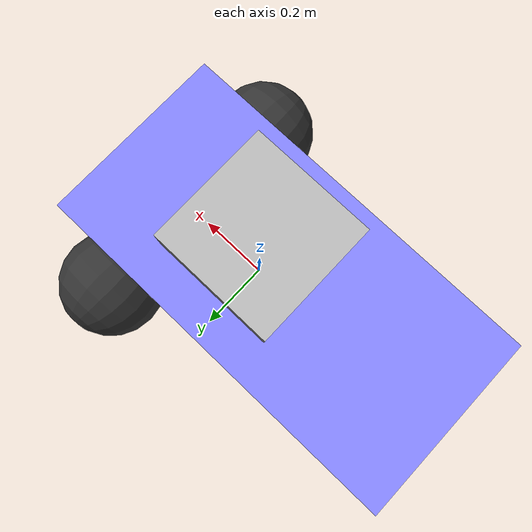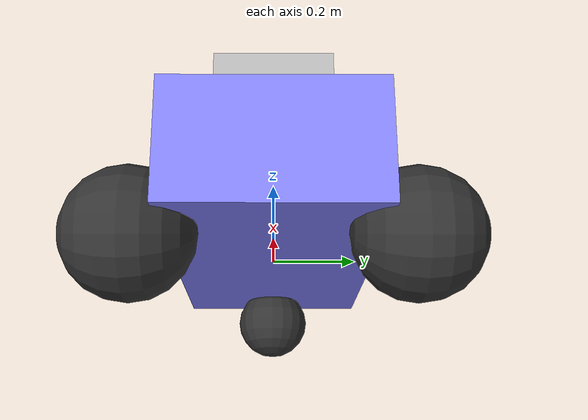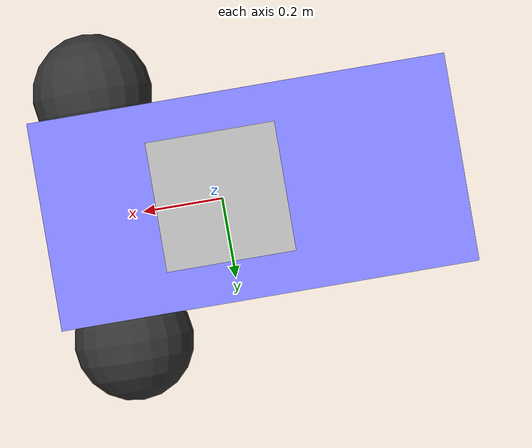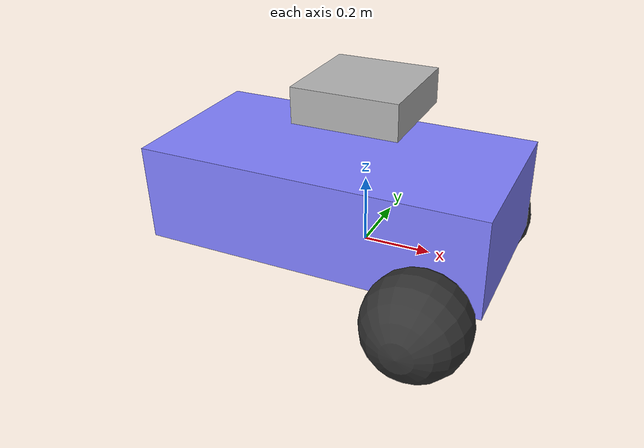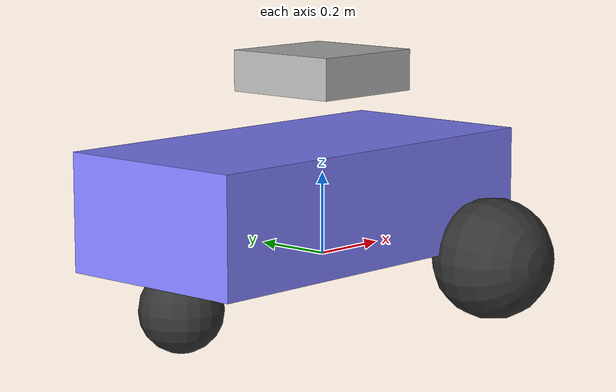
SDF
<?xml version="1.0" ?>
<sdf version="1.8">
    <model name='vehicle'>
        <link name='chassis'>
            <pose>-0.075714 0 0.147181 0 0 0</pose>
            <inertial>
                <mass>0.571975</mass>
                <inertia>
                    <ixx>0.063082</ixx>
                    <ixy>0</ixy>
                    <ixz>0</ixz>
                    <iyy>0.2082595</iyy>
                    <iyz>0</iyz>
                    <izz>0.240507</izz>
                </inertia>
            </inertial>
            <visual name='visual_chassis'>
                <geometry>
                    <box>
                        <size>1.00571 0.5 0.284363</size>
                    </box>
                </geometry>
                <material>
                    <ambient>0.5 0.5 1.0 1</ambient>
                    <diffuse>0.5 0.5 1.0 1</diffuse>
                    <specular>0.0 0.0 1.0 1</specular>
                </material>
            </visual>
            <collision name='collision_chassis'>
                <geometry>
                    <box>
                        <size>1.00571 0.5 0.284363</size>
                    </box>
                </geometry>
            </collision>
        </link>

        <link name='camera'>
            <pose>0 0 0.45 0 0 0</pose>
            <inertial>
              <mass>0.3</mass>
              <inertia>
                <ixx>0.005</ixx>
                <ixy>0</ixy>
                <ixz>0</ixz>
                <iyy>0.005</iyy>
                <iyz>0</iyz>
                <izz>0.005</izz>
              </inertia>
            </inertial>
            <visual name='visual_camera'>
              <geometry>
                <box>
                  <size>0.3 0.3 0.1</size>
                </box>
              </geometry>
              <material>
                <ambient>0.7 0.7 0.7 1</ambient>
                <diffuse>0.7 0.7 0.7 1</diffuse>
                <specular>0.3 0.3 0.3 1</specular>
              </material>
            </visual>
            <sensor name="camera" type="camera">
              <camera>
                <horizontal_fov>1.047</horizontal_fov>
                <image>
                  <width>320</width>
                  <height>240</height>
                </image>
                <clip>
                  <near>0.1</near>
                  <far>100</far>
                </clip>
              </camera>
              <always_on>1</always_on>
              <update_rate>30</update_rate>
              <visualize>true</visualize>
              <topic>camera</topic>
            </sensor>
            <collision name='collision_camera'>
              <geometry>
                <box>
                  <size>0.3 0.3 0.1</size>
                </box>
              </geometry>
            </collision>
        </link>

        <joint name='camera_joint' type='fixed'>
            <parent>chassis</parent>
            <child>camera</child>
        </joint>

        <link name='left_wheel'>
            <pose>0.277142 0.3125145 -0.0125 -1.5707 0 0</pose>
            <inertial>
                <mass>1</mass>
                <inertia>
                    <ixx>0.0729165</ixx>
                    <ixy>0</ixy>
                    <ixz>0</ixz>
                    <iyy>0.0729165</iyy>
                    <iyz>0</iyz>
                    <izz>0.0625</izz>
                </inertia>
            </inertial>
            <visual name='visual_left_wheel'>
                <geometry>
                    <sphere>
                        <radius>0.15</radius>
                    </sphere>
                </geometry>
                <material>
                    <ambient>0.2 0.2 0.2 1</ambient>
                    <diffuse>0.2 0.2 0.2 1</diffuse>
                    <specular>0.2 0.2 0.2 1</specular>
                </material>
            </visual>
            <collision name='collision_left_wheel'>
                <geometry>
                    <sphere>
                        <radius>0.15</radius>
                    </sphere>
                </geometry>
            </collision>
        </link>

        <link name='right_wheel'>
            <pose>0.277141 -0.3125145 -0.0125 -1.5707 0 0</pose>
            <inertial>
                <mass>1</mass>
                <inertia>
                    <ixx>0.0729165</ixx>
                    <ixy>0</ixy>
                    <ixz>0</ixz>
                    <iyy>0.0729165</iyy>
                    <iyz>0</iyz>
                    <izz>0.0625</izz>
                </inertia>
            </inertial>
            <visual name='visual_right_wheel'>
                <geometry>
                    <sphere>
                        <radius>0.15</radius>
                    </sphere>
                </geometry>
                <material>
                    <ambient>0.2 0.2 0.2 1</ambient>
                    <diffuse>0.2 0.2 0.2 1</diffuse>
                    <specular>0.2 0.2 0.2 1</specular>
                </material>
            </visual>
            <collision name='collision_right_wheel'>
                <geometry>
                    <sphere>
                        <radius>0.15</radius>
                    </sphere>
                </geometry>
            </collision>
        </link>

        <link name='caster'>
            <pose>-0.478569 0 -0.0625 0 -0 0</pose>
            <inertial>
                <mass>0.5</mass>
                <inertia>
                    <ixx>0.05</ixx>
                    <ixy>0</ixy>
                    <ixz>0</ixz>
                    <iyy>0.05</iyy>
                    <iyz>0</iyz>
                    <izz>0.05</izz>
                </inertia>
            </inertial>
            <visual name='visual_caster'>
                <geometry>
                    <sphere>
                        <radius>0.1</radius>
                    </sphere>
                </geometry>
                <material>
                    <ambient>0.2 0.2 0.2 1</ambient>
                    <diffuse>0.2 0.2 0.2 1</diffuse>
                    <specular>0.2 0.2 0.2 1</specular>
                </material>
            </visual>
            <collision name='collision_caster'>
                <geometry>
                    <sphere>
                        <radius>0.1</radius>
                    </sphere>
                </geometry>
            </collision>
        </link>

        <joint name='left_wheel_joint' type='revolute'>
            <parent>chassis</parent>
            <child>left_wheel</child>
            <axis>
                <xyz>0 0 1</xyz>
                <limit>
                    <lower>-1.79769e+308</lower>
                    <upper>1.79769e+308</upper>
                </limit>
            </axis>
        </joint>

        <joint name='right_wheel_joint' type='revolute'>
            <parent>chassis</parent>
            <child>right_wheel</child>
            <axis>
                <xyz>0 0 1</xyz>
                <limit>
                    <lower>-1.79769e+308</lower>
                    <upper>1.79769e+308</upper>
                </limit>
            </axis>
        </joint>

        <joint name='caster_wheel' type='ball'>
            <parent>chassis</parent>
            <child>caster</child>
        </joint>

        <plugin
            filename="ignition-gazebo-diff-drive-system"
            name="ignition::gazebo::systems::DiffDrive">
            <left_joint>left_wheel_joint</left_joint>
            <right_joint>right_wheel_joint</right_joint>
            <wheel_separation>0.625</wheel_separation>
            <wheel_radius>0.15</wheel_radius>
            <odom_publish_frequency>1</odom_publish_frequency>
            <max_linear_acceleration>1</max_linear_acceleration>
            <min_linear_acceleration>-1</min_linear_acceleration>
            <max_angular_acceleration>2</max_angular_acceleration>
            <min_angular_acceleration>-2</min_angular_acceleration>
            <max_linear_velocity>0.5</max_linear_velocity>
            <min_linear_velocity>-0.5</min_linear_velocity>
            <max_angular_velocity>1</max_angular_velocity>
            <min_angular_velocity>-1</min_angular_velocity>
        </plugin>

    </model>
</sdf>
